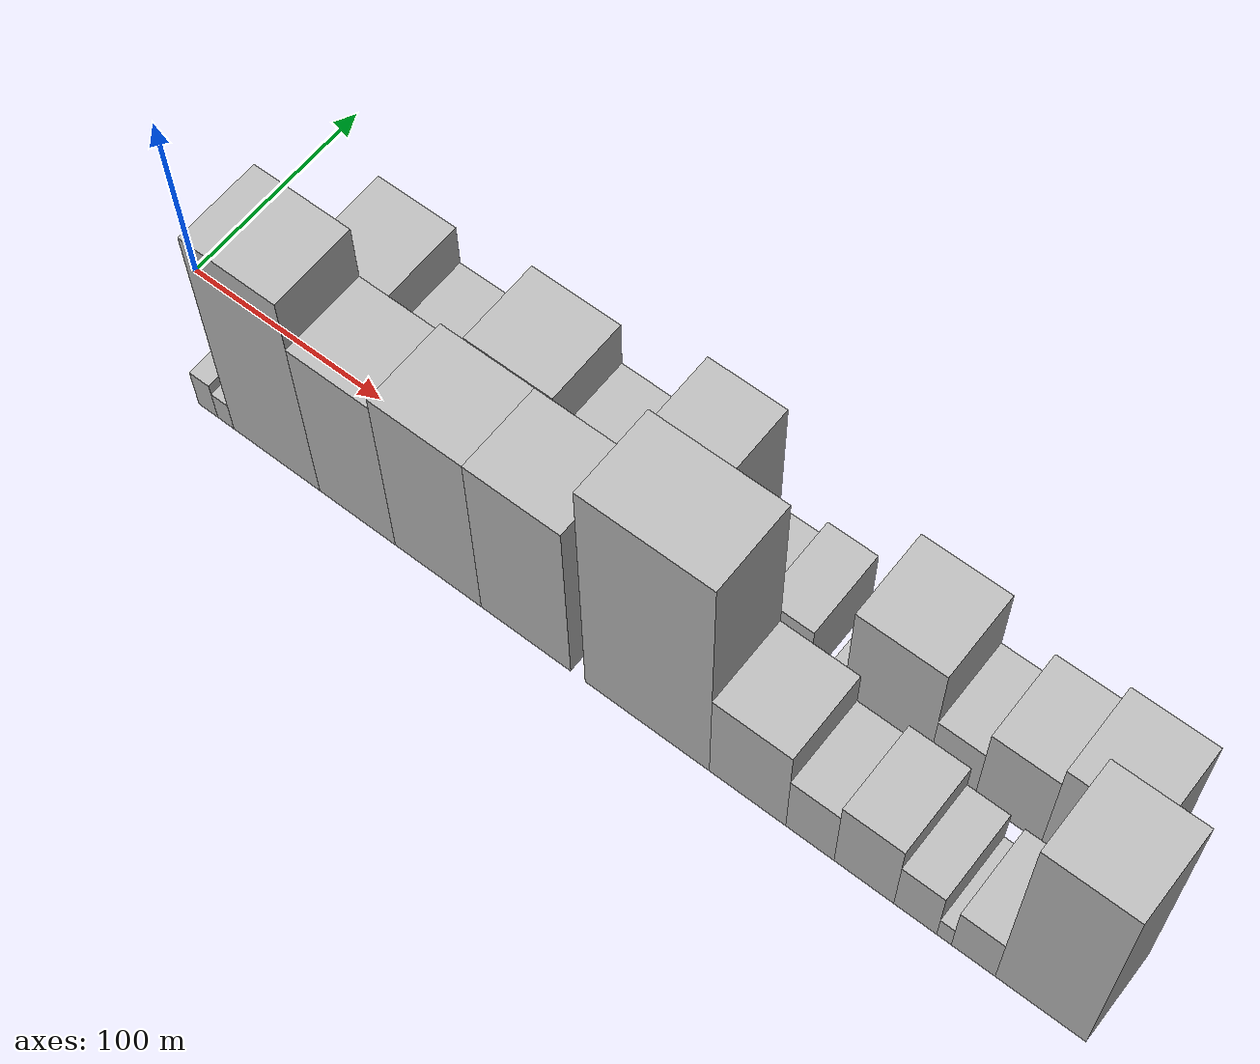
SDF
<sdf version="1.6">
 <world name="default">
  <scene>
   <sky><clouds><speed>12</speed></clouds></sky>
   <ambient>0.4 0.4 0.4 1</ambient>
   <background>0.7 0.7 0.7 1</background>
   <shadows>1</shadows>
  </scene>
  <gravity>0 0 -9.8066</gravity>
  <magnetic_field>6e-06 2.3e-05 -4.2e-05</magnetic_field>
  <physics default="0" name="default_physics" type="ode">
   <ode>
    <solver>
     <type>quick</type>
     <iters>10</iters>
     <sor>1.0</sor>
     <use_dynamic_moi_rescaling>0</use_dynamic_moi_rescaling>
    </solver>
    <constraints>
     <cfm>0</cfm>
     <erp>0.2</erp>
     <contact_max_correcting_vel>100</contact_max_correcting_vel>
     <contact_surface_layer>0.001</contact_surface_layer>
    </constraints>
   </ode>
   <max_step_size>0.004</max_step_size>
   <real_time_factor>1</real_time_factor>
   <real_time_update_rate>250</real_time_update_rate>
  </physics>
  <light name="sun" type="directional">
   <pose>0 0 10 0 0 0</pose>
   <diffuse>0.8 0.8 0.8 1</diffuse>
   <specular>0.2 0.2 0.2 1</specular>
   <attenuation>
    <range>1000</range>
    <constant>0.9</constant>
    <linear>0.01</linear>
    <quadratic>0.001</quadratic>
   </attenuation>
   <direction>-0.5 0.1 -0.9</direction>
  </light>
  <model name="building_1">
   <static>1</static>
   <pose>58.8761 26.0000 0 0.000000 0.000000 1.570796</pose>
   <link name="link">
    <pose>0 0 16.50 0 0 0</pose>
    <collision name="collision"><geometry><box><size>40.0000 19.7522 33.0000</size></box></geometry></collision>
    <visual name="visual">
     <cast_shadows>0</cast_shadows>
     <geometry><box><size>40.0000 19.7522 33.0000</size></box></geometry>
     <material>
      <script>
       <uri>model://HANNAS_wall/materials/scripts</uri>
       <uri>model://HANNAS_wall/materials/textures</uri>
       <name>vrc/HANNAS_wall</name>
      </script>
     </material>
    </visual>
   </link>
  </model>
  <model name="building_2">
   <static>1</static>
   <pose>88.1360 26.0000 0 0.000000 0.000000 1.570796</pose>
   <link name="link">
    <pose>0 0 37.50 0 0 0</pose>
    <collision name="collision"><geometry><box><size>40.0000 38.7676 75.0000</size></box></geometry></collision>
    <visual name="visual">
     <cast_shadows>0</cast_shadows>
     <geometry><box><size>40.0000 38.7676 75.0000</size></box></geometry>
     <material>
      <script>
       <uri>model://HANNAS_wall/materials/scripts</uri>
       <uri>model://HANNAS_wall/materials/textures</uri>
       <name>vrc/HANNAS_wall</name>
      </script>
     </material>
    </visual>
   </link>
  </model>
  <model name="building_3">
   <static>1</static>
   <pose>121.4978 26.0000 0 0.000000 0.000000 1.570796</pose>
   <link name="link">
    <pose>0 0 25.50 0 0 0</pose>
    <collision name="collision"><geometry><box><size>40.0000 27.9560 51.0000</size></box></geometry></collision>
    <visual name="visual">
     <cast_shadows>0</cast_shadows>
     <geometry><box><size>40.0000 27.9560 51.0000</size></box></geometry>
     <material>
      <script>
       <uri>model://HANNAS_wall/materials/scripts</uri>
       <uri>model://HANNAS_wall/materials/textures</uri>
       <name>vrc/HANNAS_wall</name>
      </script>
     </material>
    </visual>
   </link>
  </model>
  <model name="building_4">
   <static>1</static>
   <pose>140.4355 26.0000 0 0.000000 0.000000 1.570796</pose>
   <link name="link">
    <pose>0 0 10.50 0 0 0</pose>
    <collision name="collision"><geometry><box><size>40.0000 9.9194 21.0000</size></box></geometry></collision>
    <visual name="visual">
     <cast_shadows>0</cast_shadows>
     <geometry><box><size>40.0000 9.9194 21.0000</size></box></geometry>
     <material>
      <script>
       <uri>model://HANNAS_wall/materials/scripts</uri>
       <uri>model://HANNAS_wall/materials/textures</uri>
       <name>vrc/HANNAS_wall</name>
      </script>
     </material>
    </visual>
   </link>
  </model>
  <model name="building_5">
   <static>1</static>
   <pose>166.5454 26.0000 0 0.000000 0.000000 1.570796</pose>
   <link name="link">
    <pose>0 0 42.00 0 0 0</pose>
    <collision name="collision"><geometry><box><size>40.0000 42.3004 84.0000</size></box></geometry></collision>
    <visual name="visual">
     <cast_shadows>0</cast_shadows>
     <geometry><box><size>40.0000 42.3004 84.0000</size></box></geometry>
     <material>
      <script>
       <uri>model://HANNAS_wall/materials/scripts</uri>
       <uri>model://HANNAS_wall/materials/textures</uri>
       <name>vrc/HANNAS_wall</name>
      </script>
     </material>
    </visual>
   </link>
  </model>
  <model name="building_6">
   <static>1</static>
   <pose>204.6605 26.0000 0 0.000000 0.000000 1.570796</pose>
   <link name="link">
    <pose>0 0 28.50 0 0 0</pose>
    <collision name="collision"><geometry><box><size>40.0000 33.9298 57.0000</size></box></geometry></collision>
    <visual name="visual">
     <cast_shadows>0</cast_shadows>
     <geometry><box><size>40.0000 33.9298 57.0000</size></box></geometry>
     <material>
      <script>
       <uri>model://HANNAS_wall/materials/scripts</uri>
       <uri>model://HANNAS_wall/materials/textures</uri>
       <name>vrc/HANNAS_wall</name>
      </script>
     </material>
    </visual>
   </link>
  </model>
  <model name="building_7">
   <static>1</static>
   <pose>245.5308 26.0000 0 0.000000 0.000000 1.570796</pose>
   <link name="link">
    <pose>0 0 51.00 0 0 0</pose>
    <collision name="collision"><geometry><box><size>40.0000 35.8108 102.0000</size></box></geometry></collision>
    <visual name="visual">
     <cast_shadows>0</cast_shadows>
     <geometry><box><size>40.0000 35.8108 102.0000</size></box></geometry>
     <material>
      <script>
       <uri>model://HANNAS_wall/materials/scripts</uri>
       <uri>model://HANNAS_wall/materials/textures</uri>
       <name>vrc/HANNAS_wall</name>
      </script>
     </material>
    </visual>
   </link>
  </model>
  <model name="building_8">
   <static>1</static>
   <pose>276.2237 26.0000 0 0.000000 0.000000 1.570796</pose>
   <link name="link">
    <pose>0 0 15.00 0 0 0</pose>
    <collision name="collision"><geometry><box><size>40.0000 17.5750 30.0000</size></box></geometry></collision>
    <visual name="visual">
     <cast_shadows>0</cast_shadows>
     <geometry><box><size>40.0000 17.5750 30.0000</size></box></geometry>
     <material>
      <script>
       <uri>model://HANNAS_wall/materials/scripts</uri>
       <uri>model://HANNAS_wall/materials/textures</uri>
       <name>vrc/HANNAS_wall</name>
      </script>
     </material>
    </visual>
   </link>
  </model>
  <model name="building_9">
   <static>1</static>
   <pose>296.5904 26.0000 0 0.000000 0.000000 1.570796</pose>
   <link name="link">
    <pose>0 0 21.00 0 0 0</pose>
    <collision name="collision"><geometry><box><size>40.0000 23.1583 42.0000</size></box></geometry></collision>
    <visual name="visual">
     <cast_shadows>0</cast_shadows>
     <geometry><box><size>40.0000 23.1583 42.0000</size></box></geometry>
     <material>
      <script>
       <uri>model://HANNAS_wall/materials/scripts</uri>
       <uri>model://HANNAS_wall/materials/textures</uri>
       <name>vrc/HANNAS_wall</name>
      </script>
     </material>
    </visual>
   </link>
  </model>
  <model name="building_10">
   <static>1</static>
   <pose>319.4005 26.0000 0 0.000000 0.000000 1.570796</pose>
   <link name="link">
    <pose>0 0 10.50 0 0 0</pose>
    <collision name="collision"><geometry><box><size>40.0000 8.4619 21.0000</size></box></geometry></collision>
    <visual name="visual">
     <cast_shadows>0</cast_shadows>
     <geometry><box><size>40.0000 8.4619 21.0000</size></box></geometry>
     <material>
      <script>
       <uri>model://HANNAS_wall/materials/scripts</uri>
       <uri>model://HANNAS_wall/materials/textures</uri>
       <name>vrc/HANNAS_wall</name>
      </script>
     </material>
    </visual>
   </link>
  </model>
  <model name="building_11">
   <static>1</static>
   <pose>343.5191 26.0000 0 0.000000 0.000000 1.570796</pose>
   <link name="link">
    <pose>0 0 39.00 0 0 0</pose>
    <collision name="collision"><geometry><box><size>40.0000 39.7751 78.0000</size></box></geometry></collision>
    <visual name="visual">
     <cast_shadows>0</cast_shadows>
     <geometry><box><size>40.0000 39.7751 78.0000</size></box></geometry>
     <material>
      <script>
       <uri>model://HANNAS_wall/materials/scripts</uri>
       <uri>model://HANNAS_wall/materials/textures</uri>
       <name>vrc/HANNAS_wall</name>
      </script>
     </material>
    </visual>
   </link>
  </model>
  <model name="building_12">
   <static>1</static>
   <pose>373.8070 26.0000 0 0.000000 0.000000 1.570796</pose>
   <link name="link">
    <pose>0 0 19.50 0 0 0</pose>
    <collision name="collision"><geometry><box><size>40.0000 20.8008 39.0000</size></box></geometry></collision>
    <visual name="visual">
     <cast_shadows>0</cast_shadows>
     <geometry><box><size>40.0000 20.8008 39.0000</size></box></geometry>
     <material>
      <script>
       <uri>model://HANNAS_wall/materials/scripts</uri>
       <uri>model://HANNAS_wall/materials/textures</uri>
       <name>vrc/HANNAS_wall</name>
      </script>
     </material>
    </visual>
   </link>
  </model>
  <model name="building_13">
   <static>1</static>
   <pose>398.9847 26.0000 0 0.000000 0.000000 1.570796</pose>
   <link name="link">
    <pose>0 0 28.50 0 0 0</pose>
    <collision name="collision"><geometry><box><size>40.0000 29.5546 57.0000</size></box></geometry></collision>
    <visual name="visual">
     <cast_shadows>0</cast_shadows>
     <geometry><box><size>40.0000 29.5546 57.0000</size></box></geometry>
     <material>
      <script>
       <uri>model://HANNAS_wall/materials/scripts</uri>
       <uri>model://HANNAS_wall/materials/textures</uri>
       <name>vrc/HANNAS_wall</name>
      </script>
     </material>
    </visual>
   </link>
  </model>
  <model name="building_14">
   <static>1</static>
   <pose>432.5335 26.0000 0 0.000000 0.000000 1.570796</pose>
   <link name="link">
    <pose>0 0 34.50 0 0 0</pose>
    <collision name="collision"><geometry><box><size>40.0000 37.5429 69.0000</size></box></geometry></collision>
    <visual name="visual">
     <cast_shadows>0</cast_shadows>
     <geometry><box><size>40.0000 37.5429 69.0000</size></box></geometry>
     <material>
      <script>
       <uri>model://HANNAS_wall/materials/scripts</uri>
       <uri>model://HANNAS_wall/materials/textures</uri>
       <name>vrc/HANNAS_wall</name>
      </script>
     </material>
    </visual>
   </link>
  </model>
  <model name="building_15">
   <static>1</static>
   <pose>49.0996 -26.0000 0 0.000000 0.000000 1.570796</pose>
   <link name="link">
    <pose>0 0 12.00 0 0 0</pose>
    <collision name="collision"><geometry><box><size>40.0000 10.1993 24.0000</size></box></geometry></collision>
    <visual name="visual">
     <cast_shadows>0</cast_shadows>
     <geometry><box><size>40.0000 10.1993 24.0000</size></box></geometry>
     <material>
      <script>
       <uri>model://HANNAS_wall/materials/scripts</uri>
       <uri>model://HANNAS_wall/materials/textures</uri>
       <name>vrc/HANNAS_wall</name>
      </script>
     </material>
    </visual>
   </link>
  </model>
  <model name="building_16">
   <static>1</static>
   <pose>58.5199 -26.0000 0 0.000000 0.000000 1.570796</pose>
   <link name="link">
    <pose>0 0 9.00 0 0 0</pose>
    <collision name="collision"><geometry><box><size>40.0000 8.6412 18.0000</size></box></geometry></collision>
    <visual name="visual">
     <cast_shadows>0</cast_shadows>
     <geometry><box><size>40.0000 8.6412 18.0000</size></box></geometry>
     <material>
      <script>
       <uri>model://HANNAS_wall/materials/scripts</uri>
       <uri>model://HANNAS_wall/materials/textures</uri>
       <name>vrc/HANNAS_wall</name>
      </script>
     </material>
    </visual>
   </link>
  </model>
  <model name="building_17">
   <static>1</static>
   <pose>85.5615 -26.0000 0 0.000000 0.000000 1.570796</pose>
   <link name="link">
    <pose>0 0 67.50 0 0 0</pose>
    <collision name="collision"><geometry><box><size>40.0000 45.4419 135.0000</size></box></geometry></collision>
    <visual name="visual">
     <cast_shadows>0</cast_shadows>
     <geometry><box><size>40.0000 45.4419 135.0000</size></box></geometry>
     <material>
      <script>
       <uri>model://HANNAS_wall/materials/scripts</uri>
       <uri>model://HANNAS_wall/materials/textures</uri>
       <name>vrc/HANNAS_wall</name>
      </script>
     </material>
    </visual>
   </link>
  </model>
  <model name="building_18">
   <static>1</static>
   <pose>127.7809 -26.0000 0 0.000000 0.000000 1.570796</pose>
   <link name="link">
    <pose>0 0 52.50 0 0 0</pose>
    <collision name="collision"><geometry><box><size>40.0000 38.9969 105.0000</size></box></geometry></collision>
    <visual name="visual">
     <cast_shadows>0</cast_shadows>
     <geometry><box><size>40.0000 38.9969 105.0000</size></box></geometry>
     <material>
      <script>
       <uri>model://HANNAS_wall/materials/scripts</uri>
       <uri>model://HANNAS_wall/materials/textures</uri>
       <name>vrc/HANNAS_wall</name>
      </script>
     </material>
    </visual>
   </link>
  </model>
  <model name="building_19">
   <static>1</static>
   <pose>168.9784 -26.0000 0 0.000000 0.000000 1.570796</pose>
   <link name="link">
    <pose>0 0 55.50 0 0 0</pose>
    <collision name="collision"><geometry><box><size>40.0000 43.3982 111.0000</size></box></geometry></collision>
    <visual name="visual">
     <cast_shadows>0</cast_shadows>
     <geometry><box><size>40.0000 43.3982 111.0000</size></box></geometry>
     <material>
      <script>
       <uri>model://HANNAS_wall/materials/scripts</uri>
       <uri>model://HANNAS_wall/materials/textures</uri>
       <name>vrc/HANNAS_wall</name>
      </script>
     </material>
    </visual>
   </link>
  </model>
  <model name="building_20">
   <static>1</static>
   <pose>212.6721 -26.0000 0 0.000000 0.000000 1.570796</pose>
   <link name="link">
    <pose>0 0 55.50 0 0 0</pose>
    <collision name="collision"><geometry><box><size>40.0000 43.9893 111.0000</size></box></geometry></collision>
    <visual name="visual">
     <cast_shadows>0</cast_shadows>
     <geometry><box><size>40.0000 43.9893 111.0000</size></box></geometry>
     <material>
      <script>
       <uri>model://HANNAS_wall/materials/scripts</uri>
       <uri>model://HANNAS_wall/materials/textures</uri>
       <name>vrc/HANNAS_wall</name>
      </script>
     </material>
    </visual>
   </link>
  </model>
  <model name="building_21">
   <static>1</static>
   <pose>271.1728 -26.0000 0 0.000000 0.000000 1.570796</pose>
   <link name="link">
    <pose>0 0 75.00 0 0 0</pose>
    <collision name="collision"><geometry><box><size>40.0000 59.0120 150.0000</size></box></geometry></collision>
    <visual name="visual">
     <cast_shadows>0</cast_shadows>
     <geometry><box><size>40.0000 59.0120 150.0000</size></box></geometry>
     <material>
      <script>
       <uri>model://HANNAS_wall/materials/scripts</uri>
       <uri>model://HANNAS_wall/materials/textures</uri>
       <name>vrc/HANNAS_wall</name>
      </script>
     </material>
    </visual>
   </link>
  </model>
  <model name="building_22">
   <static>1</static>
   <pose>318.3493 -26.0000 0 0.000000 0.000000 1.570796</pose>
   <link name="link">
    <pose>0 0 31.50 0 0 0</pose>
    <collision name="collision"><geometry><box><size>40.0000 35.3409 63.0000</size></box></geometry></collision>
    <visual name="visual">
     <cast_shadows>0</cast_shadows>
     <geometry><box><size>40.0000 35.3409 63.0000</size></box></geometry>
     <material>
      <script>
       <uri>model://HANNAS_wall/materials/scripts</uri>
       <uri>model://HANNAS_wall/materials/textures</uri>
       <name>vrc/HANNAS_wall</name>
      </script>
     </material>
    </visual>
   </link>
  </model>
  <model name="building_23">
   <static>1</static>
   <pose>347.0046 -26.0000 0 0.000000 0.000000 1.570796</pose>
   <link name="link">
    <pose>0 0 21.00 0 0 0</pose>
    <collision name="collision"><geometry><box><size>40.0000 21.9697 42.0000</size></box></geometry></collision>
    <visual name="visual">
     <cast_shadows>0</cast_shadows>
     <geometry><box><size>40.0000 21.9697 42.0000</size></box></geometry>
     <material>
      <script>
       <uri>model://HANNAS_wall/materials/scripts</uri>
       <uri>model://HANNAS_wall/materials/textures</uri>
       <name>vrc/HANNAS_wall</name>
      </script>
     </material>
    </visual>
   </link>
  </model>
  <model name="building_24">
   <static>1</static>
   <pose>371.3682 -26.0000 0 0.000000 0.000000 1.570796</pose>
   <link name="link">
    <pose>0 0 25.50 0 0 0</pose>
    <collision name="collision"><geometry><box><size>40.0000 26.7575 51.0000</size></box></geometry></collision>
    <visual name="visual">
     <cast_shadows>0</cast_shadows>
     <geometry><box><size>40.0000 26.7575 51.0000</size></box></geometry>
     <material>
      <script>
       <uri>model://HANNAS_wall/materials/scripts</uri>
       <uri>model://HANNAS_wall/materials/textures</uri>
       <name>vrc/HANNAS_wall</name>
      </script>
     </material>
    </visual>
   </link>
  </model>
  <model name="building_25">
   <static>1</static>
   <pose>394.1914 -26.0000 0 0.000000 0.000000 1.570796</pose>
   <link name="link">
    <pose>0 0 18.00 0 0 0</pose>
    <collision name="collision"><geometry><box><size>40.0000 18.8889 36.0000</size></box></geometry></collision>
    <visual name="visual">
     <cast_shadows>0</cast_shadows>
     <geometry><box><size>40.0000 18.8889 36.0000</size></box></geometry>
     <material>
      <script>
       <uri>model://HANNAS_wall/materials/scripts</uri>
       <uri>model://HANNAS_wall/materials/textures</uri>
       <name>vrc/HANNAS_wall</name>
      </script>
     </material>
    </visual>
   </link>
  </model>
  <model name="building_26">
   <static>1</static>
   <pose>406.8486 -26.0000 0 0.000000 0.000000 1.570796</pose>
   <link name="link">
    <pose>0 0 7.50 0 0 0</pose>
    <collision name="collision"><geometry><box><size>40.0000 6.4255 15.0000</size></box></geometry></collision>
    <visual name="visual">
     <cast_shadows>0</cast_shadows>
     <geometry><box><size>40.0000 6.4255 15.0000</size></box></geometry>
     <material>
      <script>
       <uri>model://HANNAS_wall/materials/scripts</uri>
       <uri>model://HANNAS_wall/materials/textures</uri>
       <name>vrc/HANNAS_wall</name>
      </script>
     </material>
    </visual>
   </link>
  </model>
  <model name="building_27">
   <static>1</static>
   <pose>419.5922 -26.0000 0 0.000000 0.000000 1.570796</pose>
   <link name="link">
    <pose>0 0 16.50 0 0 0</pose>
    <collision name="collision"><geometry><box><size>40.0000 19.0616 33.0000</size></box></geometry></collision>
    <visual name="visual">
     <cast_shadows>0</cast_shadows>
     <geometry><box><size>40.0000 19.0616 33.0000</size></box></geometry>
     <material>
      <script>
       <uri>model://HANNAS_wall/materials/scripts</uri>
       <uri>model://HANNAS_wall/materials/textures</uri>
       <name>vrc/HANNAS_wall</name>
      </script>
     </material>
    </visual>
   </link>
  </model>
  <model name="building_28">
   <static>1</static>
   <pose>448.5561 -26.0000 0 0.000000 0.000000 1.570796</pose>
   <link name="link">
    <pose>0 0 63.00 0 0 0</pose>
    <collision name="collision"><geometry><box><size>40.0000 38.8663 126.0000</size></box></geometry></collision>
    <visual name="visual">
     <cast_shadows>0</cast_shadows>
     <geometry><box><size>40.0000 38.8663 126.0000</size></box></geometry>
     <material>
      <script>
       <uri>model://HANNAS_wall/materials/scripts</uri>
       <uri>model://HANNAS_wall/materials/textures</uri>
       <name>vrc/HANNAS_wall</name>
      </script>
     </material>
    </visual>
   </link>
  </model>
 </world>
</sdf>
